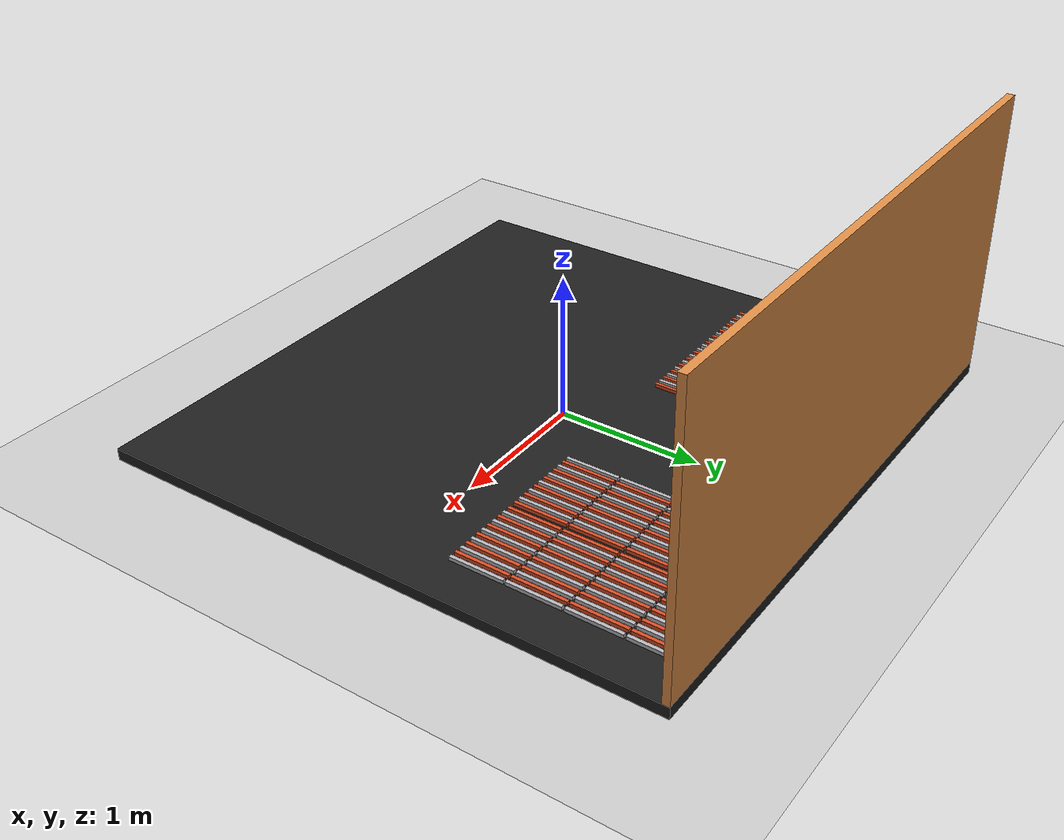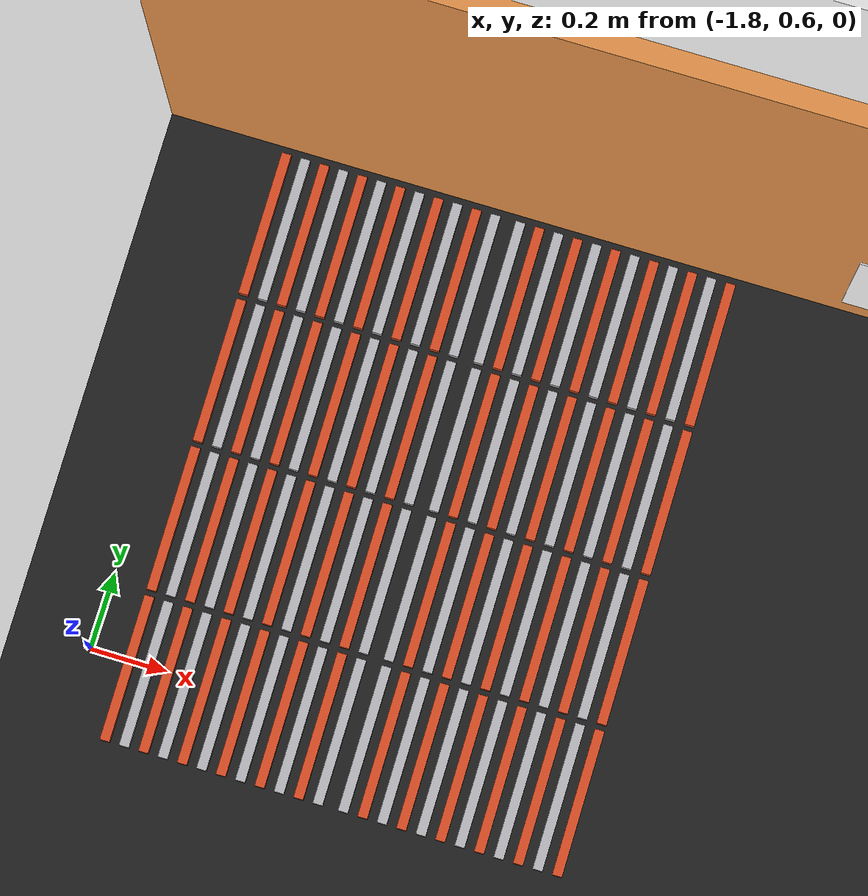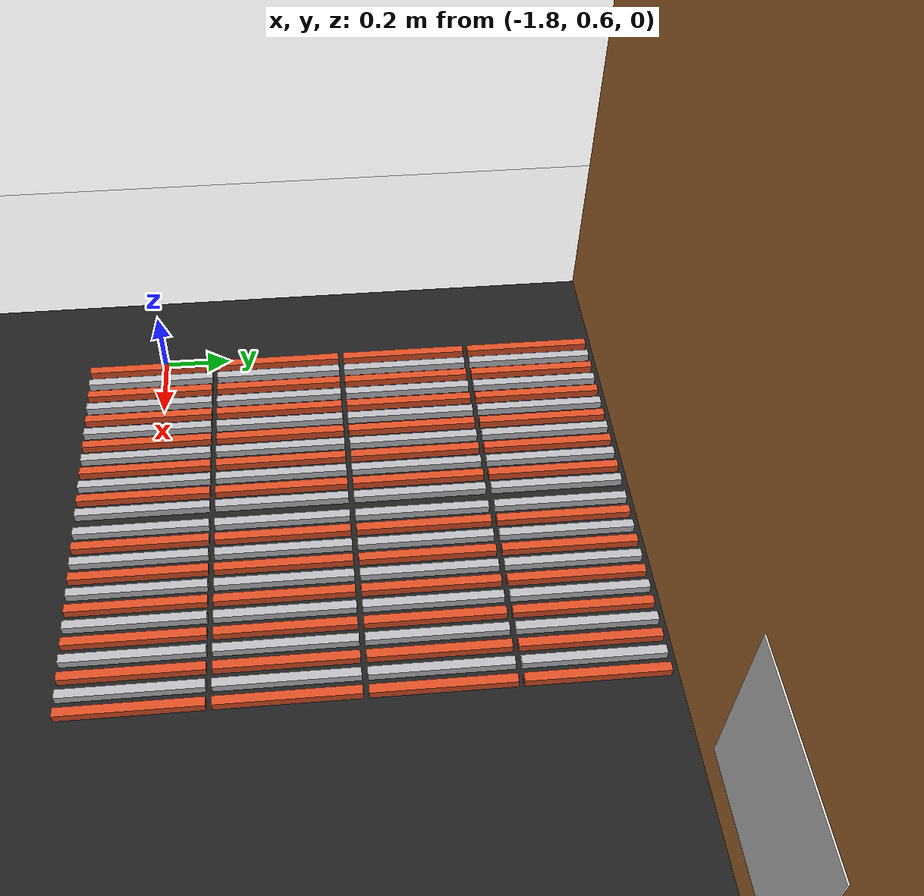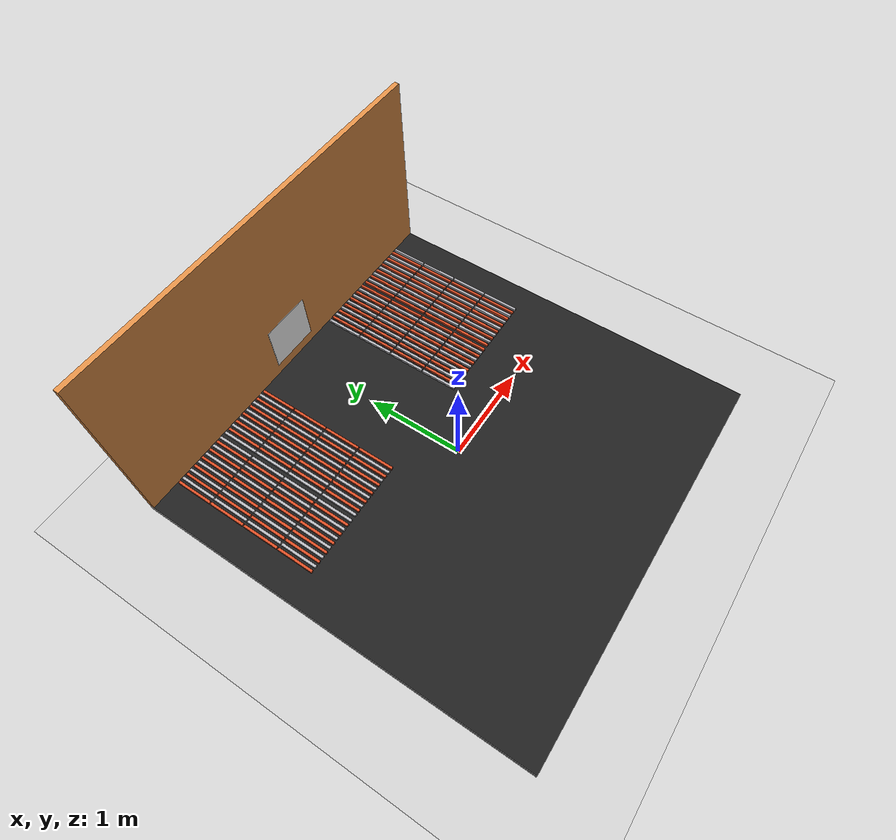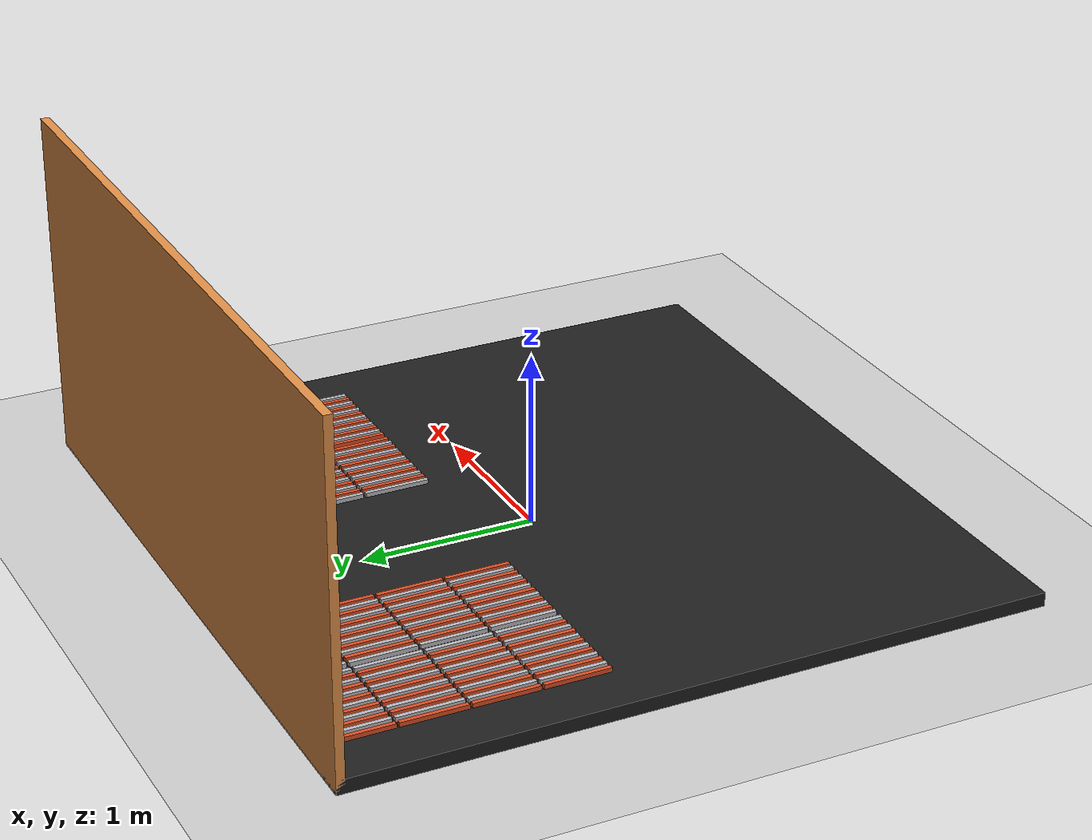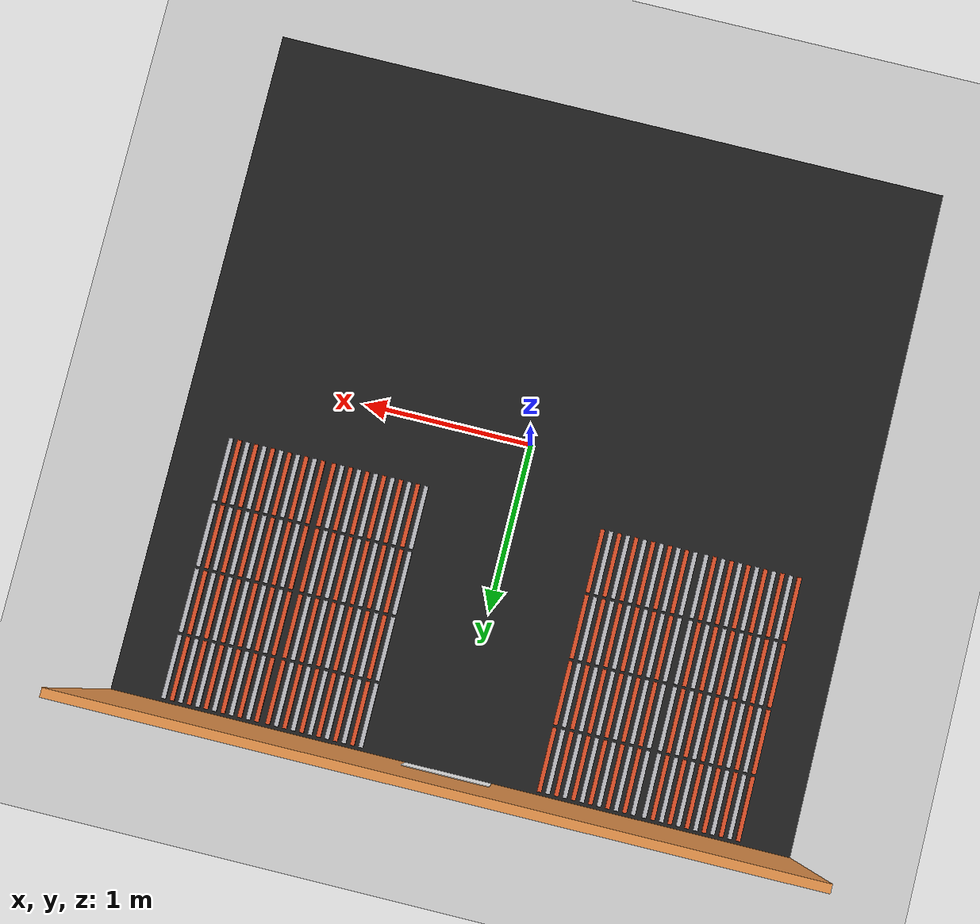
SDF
<?xml version="1.0"?>
<sdf version="1.9"><world name="electrolysis_world">
<physics name="default_physics" type="ode"><max_step_size>0.001</max_step_size><real_time_factor>1</real_time_factor></physics>

<plugin filename="gz-sim-physics-system" name="gz::sim::systems::Physics"/>
<plugin filename="gz-sim-user-commands-system" name="gz::sim::systems::UserCommands"/>
<plugin filename="gz-sim-scene-broadcaster-system" name="gz::sim::systems::SceneBroadcaster"/>
<plugin filename="gz-sim-sensors-system" name="gz::sim::systems::Sensors">
  <render_engine>ogre2</render_engine>
</plugin>
<plugin filename="gz-sim-imu-system" name="gz::sim::systems::Imu"/>

<gravity>0 0 -9.81</gravity><scene><ambient>0.55 0.55 0.55 1</ambient><background>0.92 0.92 0.92 1</background><shadows>true</shadows></scene>
<light name="sun" type="directional"><pose>0 0 8 0 0 0</pose><cast_shadows>true</cast_shadows><diffuse>0.95 0.95 0.95 1</diffuse><direction>-0.4 0.2 -1</direction></light>
<model name="ground_plane"><static>true</static><link name="link"><collision name="collision"><geometry><plane><normal>0 0 1</normal><size>20 20</size></plane></geometry></collision><visual name="visual"><geometry><plane><normal>0 0 1</normal><size>20 20</size></plane></geometry></visual></link></model>
<include><uri>model://platform</uri><name>polygon_platform</name></include>
<include><uri>model://rear_wall</uri><name>rear_wall</name><pose>0 1.975 0 0 0 0</pose></include>
<!--
  Стандартный OpenCV ArUco DICT_4X4_50, id=0, стоит по центру внутренней
  стороны стены. У модели нет collision, поэтому проезд не изменяется.
-->
<include>
  <uri>model://aruco_marker</uri>
  <name>aruco_marker</name>
  <pose>0 1.947 0 0 0 0</pose>
</include>

    <include><uri>model://electrode_cell</uri><name>left_outer_01</name><pose>-1.4150 0.5725 0.080 0 0 0</pose></include>
    <include><uri>model://electrode_cell</uri><name>left_outer_02</name><pose>-1.4150 0.9625 0.080 0 0 0</pose></include>
    <include><uri>model://electrode_cell</uri><name>left_outer_03</name><pose>-1.4150 1.3525 0.080 0 0 0</pose></include>
    <include><uri>model://electrode_cell</uri><name>left_outer_04</name><pose>-1.4150 1.7425 0.080 0 0 0</pose></include>

    <include><uri>model://electrode_cell</uri><name>left_inner_05</name><pose>-0.8000 0.5725 0.080 0 0 3.141592653589793</pose></include>
    <include><uri>model://electrode_cell</uri><name>left_inner_06</name><pose>-0.8000 0.9625 0.080 0 0 3.141592653589793</pose></include>
    <include><uri>model://electrode_cell</uri><name>left_inner_07</name><pose>-0.8000 1.3525 0.080 0 0 3.141592653589793</pose></include>
    <include><uri>model://electrode_cell</uri><name>left_inner_08</name><pose>-0.8000 1.7425 0.080 0 0 3.141592653589793</pose></include>

    <include><uri>model://electrode_cell</uri><name>right_inner_09</name><pose>0.8000 0.5725 0.080 0 0 3.141592653589793</pose></include>
    <include><uri>model://electrode_cell</uri><name>right_inner_10</name><pose>0.8000 0.9625 0.080 0 0 3.141592653589793</pose></include>
    <include><uri>model://electrode_cell</uri><name>right_inner_11</name><pose>0.8000 1.3525 0.080 0 0 3.141592653589793</pose></include>
    <include><uri>model://electrode_cell</uri><name>right_inner_12</name><pose>0.8000 1.7425 0.080 0 0 3.141592653589793</pose></include>

    <include><uri>model://electrode_cell</uri><name>right_outer_13</name><pose>1.4150 0.5725 0.080 0 0 0</pose></include>
    <include><uri>model://electrode_cell</uri><name>right_outer_14</name><pose>1.4150 0.9625 0.080 0 0 0</pose></include>
    <include><uri>model://electrode_cell</uri><name>right_outer_15</name><pose>1.4150 1.3525 0.080 0 0 0</pose></include>
    <include><uri>model://electrode_cell</uri><name>right_outer_16</name><pose>1.4150 1.7425 0.080 0 0 0</pose></include>

</world></sdf>

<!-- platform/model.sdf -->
<sdf version="1.9"><model name="platform"><static>true</static><link name="platform_link"><pose>0 0 0.04 0 0 0</pose><collision name="collision"><geometry><box><size>4 4 0.08</size></box></geometry></collision><visual name="visual"><geometry><box><size>4 4 0.08</size></box></geometry><material><ambient>0.12 0.12 0.12 1</ambient><diffuse>0.12 0.12 0.12 1</diffuse></material></visual></link></model></sdf>

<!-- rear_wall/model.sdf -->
<sdf version="1.9"><model name="rear_wall"><static>true</static><link name="wall_link"><pose>0 0 1 0 0 0</pose><collision name="collision"><geometry><box><size>4 0.05 2</size></box></geometry></collision><visual name="visual"><geometry><box><size>4 0.05 2</size></box></geometry><material><ambient>0.88 0.56 0.28 1</ambient><diffuse>0.88 0.56 0.28 1</diffuse></material></visual></link></model></sdf>

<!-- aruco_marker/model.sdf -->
<sdf version="1.9">
  <model name="aruco_marker">
    <static>true</static>

    <link name="marker_link">
      <visual name="aruco_4x4_50_id_0">
        <pose>0 0 0.45 0 0 0</pose>
        <cast_shadows>false</cast_shadows>
        <geometry>
          <box>
            <size>0.50 0.004 0.50</size>
          </box>
        </geometry>
        <material>
          <ambient>1 1 1 1</ambient>
          <diffuse>1 1 1 1</diffuse>
          <specular>0 0 0 1</specular>
          <pbr>
            <metal>
              <albedo_map>model://aruco_marker/materials/textures/aruco_4x4_50_id_0.png</albedo_map>
              <metalness>0.0</metalness>
              <roughness>1.0</roughness>
            </metal>
          </pbr>
        </material>
      </visual>
    </link>
  </model>
</sdf>

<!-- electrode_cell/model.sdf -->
<sdf version="1.9">
  <model name="electrode_cell">
    <static>true</static>

    <link name="anode_01">
      <pose>-0.2750 0 0.0125 0 0 0</pose>
      <collision name="collision">
        <geometry><box><size>0.0250 0.3750 0.0250</size></box></geometry>
      </collision>
      <visual name="visual">
        <geometry><box><size>0.0250 0.3750 0.0250</size></box></geometry>
        <material>
          <ambient>0.85 0.30 0.14 1</ambient>
          <diffuse>0.85 0.30 0.14 1</diffuse>
        </material>
      </visual>
    </link>

    <link name="cathode_02">
      <pose>-0.2250 0 0.0125 0 0 0</pose>
      <collision name="collision">
        <geometry><box><size>0.0250 0.3750 0.0250</size></box></geometry>
      </collision>
      <visual name="visual">
        <geometry><box><size>0.0250 0.3750 0.0250</size></box></geometry>
        <material>
          <ambient>0.72 0.72 0.74 1</ambient>
          <diffuse>0.72 0.72 0.74 1</diffuse>
        </material>
      </visual>
    </link>

    <link name="anode_03">
      <pose>-0.1750 0 0.0125 0 0 0</pose>
      <collision name="collision">
        <geometry><box><size>0.0250 0.3750 0.0250</size></box></geometry>
      </collision>
      <visual name="visual">
        <geometry><box><size>0.0250 0.3750 0.0250</size></box></geometry>
        <material>
          <ambient>0.85 0.30 0.14 1</ambient>
          <diffuse>0.85 0.30 0.14 1</diffuse>
        </material>
      </visual>
    </link>

    <link name="cathode_04">
      <pose>-0.1250 0 0.0125 0 0 0</pose>
      <collision name="collision">
        <geometry><box><size>0.0250 0.3750 0.0250</size></box></geometry>
      </collision>
      <visual name="visual">
        <geometry><box><size>0.0250 0.3750 0.0250</size></box></geometry>
        <material>
          <ambient>0.72 0.72 0.74 1</ambient>
          <diffuse>0.72 0.72 0.74 1</diffuse>
        </material>
      </visual>
    </link>

    <link name="anode_05">
      <pose>-0.0750 0 0.0125 0 0 0</pose>
      <collision name="collision">
        <geometry><box><size>0.0250 0.3750 0.0250</size></box></geometry>
      </collision>
      <visual name="visual">
        <geometry><box><size>0.0250 0.3750 0.0250</size></box></geometry>
        <material>
          <ambient>0.85 0.30 0.14 1</ambient>
          <diffuse>0.85 0.30 0.14 1</diffuse>
        </material>
      </visual>
    </link>

    <link name="cathode_06">
      <pose>-0.0250 0 0.0125 0 0 0</pose>
      <collision name="collision">
        <geometry><box><size>0.0250 0.3750 0.0250</size></box></geometry>
      </collision>
      <visual name="visual">
        <geometry><box><size>0.0250 0.3750 0.0250</size></box></geometry>
        <material>
          <ambient>0.72 0.72 0.74 1</ambient>
          <diffuse>0.72 0.72 0.74 1</diffuse>
        </material>
      </visual>
    </link>

    <link name="anode_07">
      <pose>0.0250 0 0.0125 0 0 0</pose>
      <collision name="collision">
        <geometry><box><size>0.0250 0.3750 0.0250</size></box></geometry>
      </collision>
      <visual name="visual">
        <geometry><box><size>0.0250 0.3750 0.0250</size></box></geometry>
        <material>
          <ambient>0.85 0.30 0.14 1</ambient>
          <diffuse>0.85 0.30 0.14 1</diffuse>
        </material>
      </visual>
    </link>

    <link name="cathode_08">
      <pose>0.0750 0 0.0125 0 0 0</pose>
      <collision name="collision">
        <geometry><box><size>0.0250 0.3750 0.0250</size></box></geometry>
      </collision>
      <visual name="visual">
        <geometry><box><size>0.0250 0.3750 0.0250</size></box></geometry>
        <material>
          <ambient>0.72 0.72 0.74 1</ambient>
          <diffuse>0.72 0.72 0.74 1</diffuse>
        </material>
      </visual>
    </link>

    <link name="anode_09">
      <pose>0.1250 0 0.0125 0 0 0</pose>
      <collision name="collision">
        <geometry><box><size>0.0250 0.3750 0.0250</size></box></geometry>
      </collision>
      <visual name="visual">
        <geometry><box><size>0.0250 0.3750 0.0250</size></box></geometry>
        <material>
          <ambient>0.85 0.30 0.14 1</ambient>
          <diffuse>0.85 0.30 0.14 1</diffuse>
        </material>
      </visual>
    </link>

    <link name="cathode_10">
      <pose>0.1750 0 0.0125 0 0 0</pose>
      <collision name="collision">
        <geometry><box><size>0.0250 0.3750 0.0250</size></box></geometry>
      </collision>
      <visual name="visual">
        <geometry><box><size>0.0250 0.3750 0.0250</size></box></geometry>
        <material>
          <ambient>0.72 0.72 0.74 1</ambient>
          <diffuse>0.72 0.72 0.74 1</diffuse>
        </material>
      </visual>
    </link>

    <link name="anode_11">
      <pose>0.2250 0 0.0125 0 0 0</pose>
      <collision name="collision">
        <geometry><box><size>0.0250 0.3750 0.0250</size></box></geometry>
      </collision>
      <visual name="visual">
        <geometry><box><size>0.0250 0.3750 0.0250</size></box></geometry>
        <material>
          <ambient>0.85 0.30 0.14 1</ambient>
          <diffuse>0.85 0.30 0.14 1</diffuse>
        </material>
      </visual>
    </link>

    <link name="cathode_12">
      <pose>0.2750 0 0.0125 0 0 0</pose>
      <collision name="collision">
        <geometry><box><size>0.0250 0.3750 0.0250</size></box></geometry>
      </collision>
      <visual name="visual">
        <geometry><box><size>0.0250 0.3750 0.0250</size></box></geometry>
        <material>
          <ambient>0.72 0.72 0.74 1</ambient>
          <diffuse>0.72 0.72 0.74 1</diffuse>
        </material>
      </visual>
    </link>
  </model>
</sdf>
